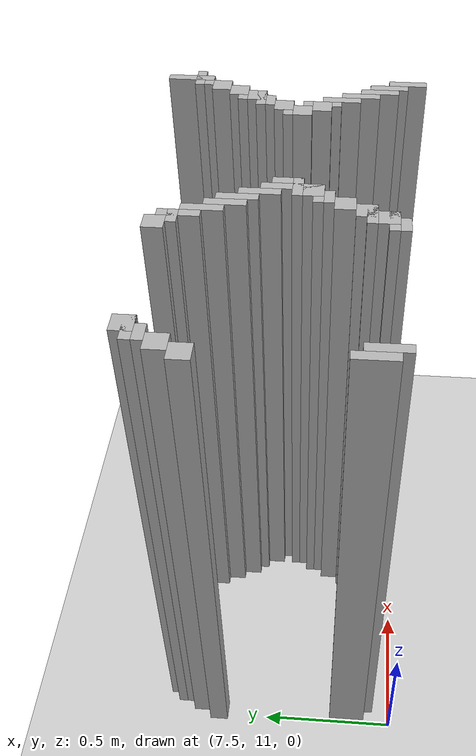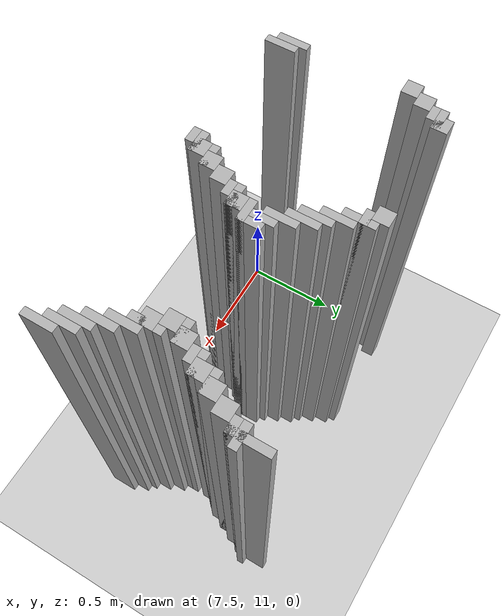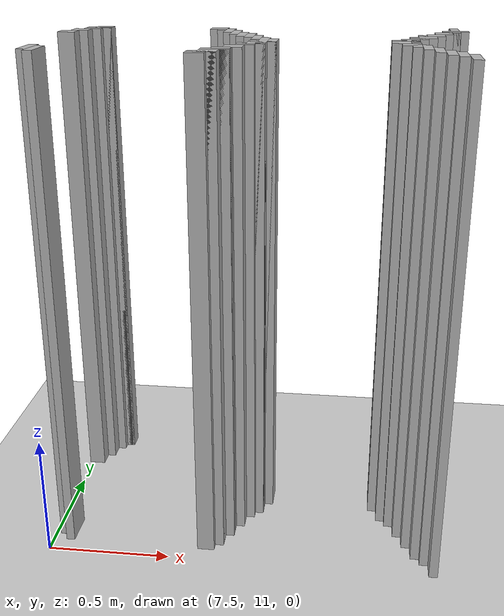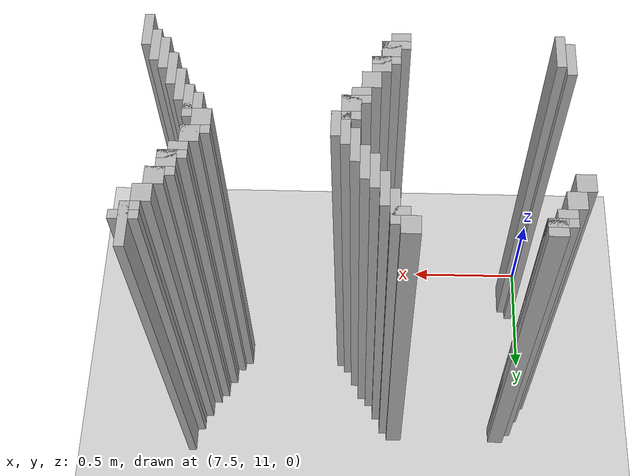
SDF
<sdf version="1.6">
 <world name="slam_world">
  <model name="ground_plane">
   <static>true</static>
   <link name="link">
    <collision name="collision">
     <geometry><plane><normal>0 0 1</normal><size>100 100</size></plane></geometry>
    </collision>
    <visual name="visual">
     <geometry><plane><normal>0 0 1</normal><size>100 100</size></plane></geometry>
     <material>
      <ambient>0.8 0.8 0.8 1</ambient>
      <diffuse>0.8 0.8 0.8 1</diffuse>
      <specular>0.8 0.8 0.8 1</specular>
     </material>
    </visual>
   </link>
  </model>
  <model name="wall_1843">
   <static>true</static>
   <pose>9.066125290023201 11.885150812064964 1.0 0 0 0</pose>
   <link name="link">
    <collision name="collision">
     <geometry><box><size>0.03480278422273782 0.17401392111368907 2.0</size></box></geometry>
    </collision>
    <visual name="visual">
     <geometry><box><size>0.03480278422273782 0.17401392111368907 2.0</size></box></geometry>
     <material><ambient>0.5 0.5 0.5 1</ambient><diffuse>0.7 0.7 0.7 1</diffuse></material>
    </visual>
   </link>
  </model>
  <model name="wall_1870">
   <static>true</static>
   <pose>7.621809744779582 11.867749419953595 1.0 0 0 0</pose>
   <link name="link">
    <collision name="collision">
     <geometry><box><size>0.06960556844547564 0.06960556844547564 2.0</size></box></geometry>
    </collision>
    <visual name="visual">
     <geometry><box><size>0.06960556844547564 0.06960556844547564 2.0</size></box></geometry>
     <material><ambient>0.5 0.5 0.5 1</ambient><diffuse>0.7 0.7 0.7 1</diffuse></material>
    </visual>
   </link>
  </model>
  <model name="wall_1871">
   <static>true</static>
   <pose>8.109048723897912 11.867749419953595 1.0 0 0 0</pose>
   <link name="link">
    <collision name="collision">
     <geometry><box><size>0.06960556844547564 0.06960556844547564 2.0</size></box></geometry>
    </collision>
    <visual name="visual">
     <geometry><box><size>0.06960556844547564 0.06960556844547564 2.0</size></box></geometry>
     <material><ambient>0.5 0.5 0.5 1</ambient><diffuse>0.7 0.7 0.7 1</diffuse></material>
    </visual>
   </link>
  </model>
  <model name="wall_1885">
   <static>true</static>
   <pose>7.604408352668213 11.850348027842227 1.0 0 0 0</pose>
   <link name="link">
    <collision name="collision">
     <geometry><box><size>0.10440835266821345 0.03480278422273782 2.0</size></box></geometry>
    </collision>
    <visual name="visual">
     <geometry><box><size>0.10440835266821345 0.03480278422273782 2.0</size></box></geometry>
     <material><ambient>0.5 0.5 0.5 1</ambient><diffuse>0.7 0.7 0.7 1</diffuse></material>
    </visual>
   </link>
  </model>
  <model name="wall_1886">
   <static>true</static>
   <pose>8.161252900232018 11.79814385150812 1.0 0 0 0</pose>
   <link name="link">
    <collision name="collision">
     <geometry><box><size>0.03480278422273782 0.13921113689095127 2.0</size></box></geometry>
    </collision>
    <visual name="visual">
     <geometry><box><size>0.03480278422273782 0.13921113689095127 2.0</size></box></geometry>
     <material><ambient>0.5 0.5 0.5 1</ambient><diffuse>0.7 0.7 0.7 1</diffuse></material>
    </visual>
   </link>
  </model>
  <model name="wall_1887">
   <static>true</static>
   <pose>9.066125290023201 11.850348027842227 1.0 0 0 0</pose>
   <link name="link">
    <collision name="collision">
     <geometry><box><size>0.10440835266821345 0.03480278422273782 2.0</size></box></geometry>
    </collision>
    <visual name="visual">
     <geometry><box><size>0.10440835266821345 0.03480278422273782 2.0</size></box></geometry>
     <material><ambient>0.5 0.5 0.5 1</ambient><diffuse>0.7 0.7 0.7 1</diffuse></material>
    </visual>
   </link>
  </model>
  <model name="wall_1901">
   <static>true</static>
   <pose>7.587006960556844 11.81554524361949 1.0 0 0 0</pose>
   <link name="link">
    <collision name="collision">
     <geometry><box><size>0.06960556844547564 0.03480278422273782 2.0</size></box></geometry>
    </collision>
    <visual name="visual">
     <geometry><box><size>0.06960556844547564 0.03480278422273782 2.0</size></box></geometry>
     <material><ambient>0.5 0.5 0.5 1</ambient><diffuse>0.7 0.7 0.7 1</diffuse></material>
    </visual>
   </link>
  </model>
  <model name="wall_1902">
   <static>true</static>
   <pose>8.14385150812065 11.81554524361949 1.0 0 0 0</pose>
   <link name="link">
    <collision name="collision">
     <geometry><box><size>0.06960556844547564 0.03480278422273782 2.0</size></box></geometry>
    </collision>
    <visual name="visual">
     <geometry><box><size>0.06960556844547564 0.03480278422273782 2.0</size></box></geometry>
     <material><ambient>0.5 0.5 0.5 1</ambient><diffuse>0.7 0.7 0.7 1</diffuse></material>
    </visual>
   </link>
  </model>
  <model name="wall_1903">
   <static>true</static>
   <pose>9.048723897911833 11.81554524361949 1.0 0 0 0</pose>
   <link name="link">
    <collision name="collision">
     <geometry><box><size>0.06960556844547564 0.03480278422273782 2.0</size></box></geometry>
    </collision>
    <visual name="visual">
     <geometry><box><size>0.06960556844547564 0.03480278422273782 2.0</size></box></geometry>
     <material><ambient>0.5 0.5 0.5 1</ambient><diffuse>0.7 0.7 0.7 1</diffuse></material>
    </visual>
   </link>
  </model>
  <model name="wall_1917">
   <static>true</static>
   <pose>7.552204176334106 11.763341067285383 1.0 0 0 0</pose>
   <link name="link">
    <collision name="collision">
     <geometry><box><size>0.06960556844547564 0.06960556844547564 2.0</size></box></geometry>
    </collision>
    <visual name="visual">
     <geometry><box><size>0.06960556844547564 0.06960556844547564 2.0</size></box></geometry>
     <material><ambient>0.5 0.5 0.5 1</ambient><diffuse>0.7 0.7 0.7 1</diffuse></material>
    </visual>
   </link>
  </model>
  <model name="wall_1918">
   <static>true</static>
   <pose>8.196055684454755 11.728538283062644 1.0 0 0 0</pose>
   <link name="link">
    <collision name="collision">
     <geometry><box><size>0.03480278422273782 0.13921113689095127 2.0</size></box></geometry>
    </collision>
    <visual name="visual">
     <geometry><box><size>0.03480278422273782 0.13921113689095127 2.0</size></box></geometry>
     <material><ambient>0.5 0.5 0.5 1</ambient><diffuse>0.7 0.7 0.7 1</diffuse></material>
    </visual>
   </link>
  </model>
  <model name="wall_1919">
   <static>true</static>
   <pose>9.013921113689095 11.763341067285383 1.0 0 0 0</pose>
   <link name="link">
    <collision name="collision">
     <geometry><box><size>0.06960556844547564 0.06960556844547564 2.0</size></box></geometry>
    </collision>
    <visual name="visual">
     <geometry><box><size>0.06960556844547564 0.06960556844547564 2.0</size></box></geometry>
     <material><ambient>0.5 0.5 0.5 1</ambient><diffuse>0.7 0.7 0.7 1</diffuse></material>
    </visual>
   </link>
  </model>
  <model name="wall_1933">
   <static>true</static>
   <pose>7.517401392111369 11.693735498839906 1.0 0 0 0</pose>
   <link name="link">
    <collision name="collision">
     <geometry><box><size>0.06960556844547564 0.06960556844547564 2.0</size></box></geometry>
    </collision>
    <visual name="visual">
     <geometry><box><size>0.06960556844547564 0.06960556844547564 2.0</size></box></geometry>
     <material><ambient>0.5 0.5 0.5 1</ambient><diffuse>0.7 0.7 0.7 1</diffuse></material>
    </visual>
   </link>
  </model>
  <model name="wall_1934">
   <static>true</static>
   <pose>8.230858468677495 11.658932714617169 1.0 0 0 0</pose>
   <link name="link">
    <collision name="collision">
     <geometry><box><size>0.03480278422273782 0.13921113689095127 2.0</size></box></geometry>
    </collision>
    <visual name="visual">
     <geometry><box><size>0.03480278422273782 0.13921113689095127 2.0</size></box></geometry>
     <material><ambient>0.5 0.5 0.5 1</ambient><diffuse>0.7 0.7 0.7 1</diffuse></material>
    </visual>
   </link>
  </model>
  <model name="wall_1935">
   <static>true</static>
   <pose>8.979118329466356 11.693735498839906 1.0 0 0 0</pose>
   <link name="link">
    <collision name="collision">
     <geometry><box><size>0.06960556844547564 0.06960556844547564 2.0</size></box></geometry>
    </collision>
    <visual name="visual">
     <geometry><box><size>0.06960556844547564 0.06960556844547564 2.0</size></box></geometry>
     <material><ambient>0.5 0.5 0.5 1</ambient><diffuse>0.7 0.7 0.7 1</diffuse></material>
    </visual>
   </link>
  </model>
  <model name="wall_1950">
   <static>true</static>
   <pose>8.265661252900232 11.624129930394432 1.0 0 0 0</pose>
   <link name="link">
    <collision name="collision">
     <geometry><box><size>0.03480278422273782 0.13921113689095127 2.0</size></box></geometry>
    </collision>
    <visual name="visual">
     <geometry><box><size>0.03480278422273782 0.13921113689095127 2.0</size></box></geometry>
     <material><ambient>0.5 0.5 0.5 1</ambient><diffuse>0.7 0.7 0.7 1</diffuse></material>
    </visual>
   </link>
  </model>
  <model name="wall_1951">
   <static>true</static>
   <pose>8.961716937354987 11.676334106728538 1.0 0 0 0</pose>
   <link name="link">
    <collision name="collision">
     <geometry><box><size>0.10440835266821345 0.03480278422273782 2.0</size></box></geometry>
    </collision>
    <visual name="visual">
     <geometry><box><size>0.10440835266821345 0.03480278422273782 2.0</size></box></geometry>
     <material><ambient>0.5 0.5 0.5 1</ambient><diffuse>0.7 0.7 0.7 1</diffuse></material>
    </visual>
   </link>
  </model>
  <model name="wall_1962">
   <static>true</static>
   <pose>8.944315545243619 11.624129930394432 1.0 0 0 0</pose>
   <link name="link">
    <collision name="collision">
     <geometry><box><size>0.06960556844547564 0.06960556844547564 2.0</size></box></geometry>
    </collision>
    <visual name="visual">
     <geometry><box><size>0.06960556844547564 0.06960556844547564 2.0</size></box></geometry>
     <material><ambient>0.5 0.5 0.5 1</ambient><diffuse>0.7 0.7 0.7 1</diffuse></material>
    </visual>
   </link>
  </model>
  <model name="wall_1975">
   <static>true</static>
   <pose>8.30046403712297 11.554524361948955 1.0 0 0 0</pose>
   <link name="link">
    <collision name="collision">
     <geometry><box><size>0.03480278422273782 0.13921113689095127 2.0</size></box></geometry>
    </collision>
    <visual name="visual">
     <geometry><box><size>0.03480278422273782 0.13921113689095127 2.0</size></box></geometry>
     <material><ambient>0.5 0.5 0.5 1</ambient><diffuse>0.7 0.7 0.7 1</diffuse></material>
    </visual>
   </link>
  </model>
  <model name="wall_1976">
   <static>true</static>
   <pose>8.92691415313225 11.606728538283063 1.0 0 0 0</pose>
   <link name="link">
    <collision name="collision">
     <geometry><box><size>0.10440835266821345 0.03480278422273782 2.0</size></box></geometry>
    </collision>
    <visual name="visual">
     <geometry><box><size>0.10440835266821345 0.03480278422273782 2.0</size></box></geometry>
     <material><ambient>0.5 0.5 0.5 1</ambient><diffuse>0.7 0.7 0.7 1</diffuse></material>
    </visual>
   </link>
  </model>
  <model name="wall_1987">
   <static>true</static>
   <pose>8.909512761020881 11.571925754060324 1.0 0 0 0</pose>
   <link name="link">
    <collision name="collision">
     <geometry><box><size>0.06960556844547564 0.03480278422273782 2.0</size></box></geometry>
    </collision>
    <visual name="visual">
     <geometry><box><size>0.06960556844547564 0.03480278422273782 2.0</size></box></geometry>
     <material><ambient>0.5 0.5 0.5 1</ambient><diffuse>0.7 0.7 0.7 1</diffuse></material>
    </visual>
   </link>
  </model>
  <model name="wall_2000">
   <static>true</static>
   <pose>8.335266821345707 11.450116009280743 1.0 0 0 0</pose>
   <link name="link">
    <collision name="collision">
     <geometry><box><size>0.03480278422273782 0.2088167053364269 2.0</size></box></geometry>
    </collision>
    <visual name="visual">
     <geometry><box><size>0.03480278422273782 0.2088167053364269 2.0</size></box></geometry>
     <material><ambient>0.5 0.5 0.5 1</ambient><diffuse>0.7 0.7 0.7 1</diffuse></material>
    </visual>
   </link>
  </model>
  <model name="wall_2001">
   <static>true</static>
   <pose>8.874709976798144 11.519721577726218 1.0 0 0 0</pose>
   <link name="link">
    <collision name="collision">
     <geometry><box><size>0.06960556844547564 0.06960556844547564 2.0</size></box></geometry>
    </collision>
    <visual name="visual">
     <geometry><box><size>0.06960556844547564 0.06960556844547564 2.0</size></box></geometry>
     <material><ambient>0.5 0.5 0.5 1</ambient><diffuse>0.7 0.7 0.7 1</diffuse></material>
    </visual>
   </link>
  </model>
  <model name="wall_2015">
   <static>true</static>
   <pose>8.370069605568444 11.467517401392112 1.0 0 0 0</pose>
   <link name="link">
    <collision name="collision">
     <geometry><box><size>0.03480278422273782 0.10440835266821345 2.0</size></box></geometry>
    </collision>
    <visual name="visual">
     <geometry><box><size>0.03480278422273782 0.10440835266821345 2.0</size></box></geometry>
     <material><ambient>0.5 0.5 0.5 1</ambient><diffuse>0.7 0.7 0.7 1</diffuse></material>
    </visual>
   </link>
  </model>
  <model name="wall_2016">
   <static>true</static>
   <pose>8.857308584686775 11.502320185614849 1.0 0 0 0</pose>
   <link name="link">
    <collision name="collision">
     <geometry><box><size>0.10440835266821345 0.03480278422273782 2.0</size></box></geometry>
    </collision>
    <visual name="visual">
     <geometry><box><size>0.10440835266821345 0.03480278422273782 2.0</size></box></geometry>
     <material><ambient>0.5 0.5 0.5 1</ambient><diffuse>0.7 0.7 0.7 1</diffuse></material>
    </visual>
   </link>
  </model>
  <model name="wall_2028">
   <static>true</static>
   <pose>8.839907192575406 11.450116009280743 1.0 0 0 0</pose>
   <link name="link">
    <collision name="collision">
     <geometry><box><size>0.06960556844547564 0.06960556844547564 2.0</size></box></geometry>
    </collision>
    <visual name="visual">
     <geometry><box><size>0.06960556844547564 0.06960556844547564 2.0</size></box></geometry>
     <material><ambient>0.5 0.5 0.5 1</ambient><diffuse>0.7 0.7 0.7 1</diffuse></material>
    </visual>
   </link>
  </model>
  <model name="wall_2041">
   <static>true</static>
   <pose>8.335266821345707 11.432714617169372 1.0 0 0 0</pose>
   <link name="link">
    <collision name="collision">
     <geometry><box><size>0.10440835266821345 0.03480278422273782 2.0</size></box></geometry>
    </collision>
    <visual name="visual">
     <geometry><box><size>0.10440835266821345 0.03480278422273782 2.0</size></box></geometry>
     <material><ambient>0.5 0.5 0.5 1</ambient><diffuse>0.7 0.7 0.7 1</diffuse></material>
    </visual>
   </link>
  </model>
  <model name="wall_2042">
   <static>true</static>
   <pose>8.892111368909513 11.380510440835266 1.0 0 0 0</pose>
   <link name="link">
    <collision name="collision">
     <geometry><box><size>0.03480278422273782 0.13921113689095127 2.0</size></box></geometry>
    </collision>
    <visual name="visual">
     <geometry><box><size>0.03480278422273782 0.13921113689095127 2.0</size></box></geometry>
     <material><ambient>0.5 0.5 0.5 1</ambient><diffuse>0.7 0.7 0.7 1</diffuse></material>
    </visual>
   </link>
  </model>
  <model name="wall_2058">
   <static>true</static>
   <pose>8.317865429234338 11.380510440835266 1.0 0 0 0</pose>
   <link name="link">
    <collision name="collision">
     <geometry><box><size>0.06960556844547564 0.06960556844547564 2.0</size></box></geometry>
    </collision>
    <visual name="visual">
     <geometry><box><size>0.06960556844547564 0.06960556844547564 2.0</size></box></geometry>
     <material><ambient>0.5 0.5 0.5 1</ambient><diffuse>0.7 0.7 0.7 1</diffuse></material>
    </visual>
   </link>
  </model>
  <model name="wall_2059">
   <static>true</static>
   <pose>8.874709976798144 11.380510440835266 1.0 0 0 0</pose>
   <link name="link">
    <collision name="collision">
     <geometry><box><size>0.06960556844547564 0.06960556844547564 2.0</size></box></geometry>
    </collision>
    <visual name="visual">
     <geometry><box><size>0.06960556844547564 0.06960556844547564 2.0</size></box></geometry>
     <material><ambient>0.5 0.5 0.5 1</ambient><diffuse>0.7 0.7 0.7 1</diffuse></material>
    </visual>
   </link>
  </model>
  <model name="wall_2075">
   <static>true</static>
   <pose>8.30046403712297 11.363109048723897 1.0 0 0 0</pose>
   <link name="link">
    <collision name="collision">
     <geometry><box><size>0.10440835266821345 0.03480278422273782 2.0</size></box></geometry>
    </collision>
    <visual name="visual">
     <geometry><box><size>0.10440835266821345 0.03480278422273782 2.0</size></box></geometry>
     <material><ambient>0.5 0.5 0.5 1</ambient><diffuse>0.7 0.7 0.7 1</diffuse></material>
    </visual>
   </link>
  </model>
  <model name="wall_2076">
   <static>true</static>
   <pose>8.92691415313225 11.310904872389791 1.0 0 0 0</pose>
   <link name="link">
    <collision name="collision">
     <geometry><box><size>0.03480278422273782 0.13921113689095127 2.0</size></box></geometry>
    </collision>
    <visual name="visual">
     <geometry><box><size>0.03480278422273782 0.13921113689095127 2.0</size></box></geometry>
     <material><ambient>0.5 0.5 0.5 1</ambient><diffuse>0.7 0.7 0.7 1</diffuse></material>
    </visual>
   </link>
  </model>
  <model name="wall_2087">
   <static>true</static>
   <pose>8.2830626450116 11.32830626450116 1.0 0 0 0</pose>
   <link name="link">
    <collision name="collision">
     <geometry><box><size>0.06960556844547564 0.03480278422273782 2.0</size></box></geometry>
    </collision>
    <visual name="visual">
     <geometry><box><size>0.06960556844547564 0.03480278422273782 2.0</size></box></geometry>
     <material><ambient>0.5 0.5 0.5 1</ambient><diffuse>0.7 0.7 0.7 1</diffuse></material>
    </visual>
   </link>
  </model>
  <model name="wall_2100">
   <static>true</static>
   <pose>8.248259860788863 11.276102088167052 1.0 0 0 0</pose>
   <link name="link">
    <collision name="collision">
     <geometry><box><size>0.06960556844547564 0.06960556844547564 2.0</size></box></geometry>
    </collision>
    <visual name="visual">
     <geometry><box><size>0.06960556844547564 0.06960556844547564 2.0</size></box></geometry>
     <material><ambient>0.5 0.5 0.5 1</ambient><diffuse>0.7 0.7 0.7 1</diffuse></material>
    </visual>
   </link>
  </model>
  <model name="wall_2101">
   <static>true</static>
   <pose>8.961716937354987 11.241299303944315 1.0 0 0 0</pose>
   <link name="link">
    <collision name="collision">
     <geometry><box><size>0.03480278422273782 0.13921113689095127 2.0</size></box></geometry>
    </collision>
    <visual name="visual">
     <geometry><box><size>0.03480278422273782 0.13921113689095127 2.0</size></box></geometry>
     <material><ambient>0.5 0.5 0.5 1</ambient><diffuse>0.7 0.7 0.7 1</diffuse></material>
    </visual>
   </link>
  </model>
  <model name="wall_2116">
   <static>true</static>
   <pose>7.534802784222737 11.17169373549884 1.0 0 0 0</pose>
   <link name="link">
    <collision name="collision">
     <geometry><box><size>0.03480278422273782 0.13921113689095127 2.0</size></box></geometry>
    </collision>
    <visual name="visual">
     <geometry><box><size>0.03480278422273782 0.13921113689095127 2.0</size></box></geometry>
     <material><ambient>0.5 0.5 0.5 1</ambient><diffuse>0.7 0.7 0.7 1</diffuse></material>
    </visual>
   </link>
  </model>
  <model name="wall_2117">
   <static>true</static>
   <pose>8.213457076566124 11.206496519721577 1.0 0 0 0</pose>
   <link name="link">
    <collision name="collision">
     <geometry><box><size>0.06960556844547564 0.06960556844547564 2.0</size></box></geometry>
    </collision>
    <visual name="visual">
     <geometry><box><size>0.06960556844547564 0.06960556844547564 2.0</size></box></geometry>
     <material><ambient>0.5 0.5 0.5 1</ambient><diffuse>0.7 0.7 0.7 1</diffuse></material>
    </visual>
   </link>
  </model>
  <model name="wall_2118">
   <static>true</static>
   <pose>8.996519721577727 11.17169373549884 1.0 0 0 0</pose>
   <link name="link">
    <collision name="collision">
     <geometry><box><size>0.03480278422273782 0.13921113689095127 2.0</size></box></geometry>
    </collision>
    <visual name="visual">
     <geometry><box><size>0.03480278422273782 0.13921113689095127 2.0</size></box></geometry>
     <material><ambient>0.5 0.5 0.5 1</ambient><diffuse>0.7 0.7 0.7 1</diffuse></material>
    </visual>
   </link>
  </model>
  <model name="wall_2133">
   <static>true</static>
   <pose>7.569605568445476 11.1368909512761 1.0 0 0 0</pose>
   <link name="link">
    <collision name="collision">
     <geometry><box><size>0.03480278422273782 0.13921113689095127 2.0</size></box></geometry>
    </collision>
    <visual name="visual">
     <geometry><box><size>0.03480278422273782 0.13921113689095127 2.0</size></box></geometry>
     <material><ambient>0.5 0.5 0.5 1</ambient><diffuse>0.7 0.7 0.7 1</diffuse></material>
    </visual>
   </link>
  </model>
  <model name="wall_2134">
   <static>true</static>
   <pose>8.196055684454755 11.189095127610209 1.0 0 0 0</pose>
   <link name="link">
    <collision name="collision">
     <geometry><box><size>0.10440835266821345 0.03480278422273782 2.0</size></box></geometry>
    </collision>
    <visual name="visual">
     <geometry><box><size>0.10440835266821345 0.03480278422273782 2.0</size></box></geometry>
     <material><ambient>0.5 0.5 0.5 1</ambient><diffuse>0.7 0.7 0.7 1</diffuse></material>
    </visual>
   </link>
  </model>
  <model name="wall_2135">
   <static>true</static>
   <pose>9.031322505800464 11.1368909512761 1.0 0 0 0</pose>
   <link name="link">
    <collision name="collision">
     <geometry><box><size>0.03480278422273782 0.13921113689095127 2.0</size></box></geometry>
    </collision>
    <visual name="visual">
     <geometry><box><size>0.03480278422273782 0.13921113689095127 2.0</size></box></geometry>
     <material><ambient>0.5 0.5 0.5 1</ambient><diffuse>0.7 0.7 0.7 1</diffuse></material>
    </visual>
   </link>
  </model>
  <model name="wall_2145">
   <static>true</static>
   <pose>8.178654292343387 11.1368909512761 1.0 0 0 0</pose>
   <link name="link">
    <collision name="collision">
     <geometry><box><size>0.06960556844547564 0.06960556844547564 2.0</size></box></geometry>
    </collision>
    <visual name="visual">
     <geometry><box><size>0.06960556844547564 0.06960556844547564 2.0</size></box></geometry>
     <material><ambient>0.5 0.5 0.5 1</ambient><diffuse>0.7 0.7 0.7 1</diffuse></material>
    </visual>
   </link>
  </model>
  <model name="wall_2158">
   <static>true</static>
   <pose>8.161252900232018 11.119489559164732 1.0 0 0 0</pose>
   <link name="link">
    <collision name="collision">
     <geometry><box><size>0.10440835266821345 0.03480278422273782 2.0</size></box></geometry>
    </collision>
    <visual name="visual">
     <geometry><box><size>0.10440835266821345 0.03480278422273782 2.0</size></box></geometry>
     <material><ambient>0.5 0.5 0.5 1</ambient><diffuse>0.7 0.7 0.7 1</diffuse></material>
    </visual>
   </link>
  </model>
  <model name="wall_2159">
   <static>true</static>
   <pose>9.066125290023201 11.067285382830626 1.0 0 0 0</pose>
   <link name="link">
    <collision name="collision">
     <geometry><box><size>0.03480278422273782 0.13921113689095127 2.0</size></box></geometry>
    </collision>
    <visual name="visual">
     <geometry><box><size>0.03480278422273782 0.13921113689095127 2.0</size></box></geometry>
     <material><ambient>0.5 0.5 0.5 1</ambient><diffuse>0.7 0.7 0.7 1</diffuse></material>
    </visual>
   </link>
  </model>
  <model name="wall_2169">
   <static>true</static>
   <pose>8.14385150812065 11.084686774941995 1.0 0 0 0</pose>
   <link name="link">
    <collision name="collision">
     <geometry><box><size>0.06960556844547564 0.03480278422273782 2.0</size></box></geometry>
    </collision>
    <visual name="visual">
     <geometry><box><size>0.06960556844547564 0.03480278422273782 2.0</size></box></geometry>
     <material><ambient>0.5 0.5 0.5 1</ambient><diffuse>0.7 0.7 0.7 1</diffuse></material>
    </visual>
   </link>
  </model>
 </world>
</sdf>
